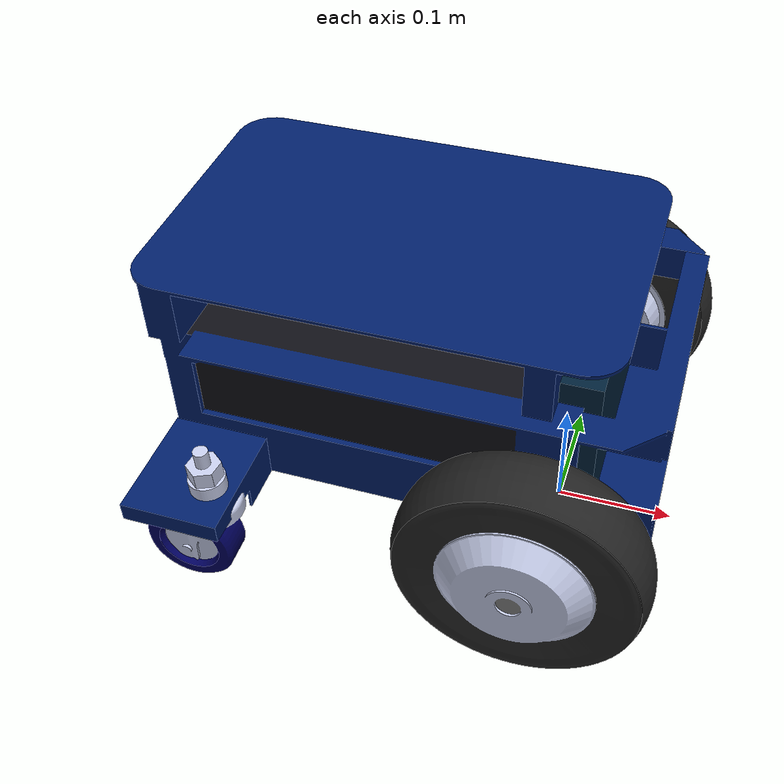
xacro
<?xml version="1.0"?>
<robot xmlns:xacro="http://www.ros.org/wiki/xacro">

  <xacro:property name="wheel_r" value="0.1" />
  <xacro:property name="wheel_xpos" value="0.11" />
  <xacro:include filename="$(find start_creating_robots)/worlds_and_models/krytn/inertial.xacro" />

  <xacro:macro name="low_friction">
              <mu>0.1</mu>
              <mu1>0.1</mu1>
              <mu2>0.1</mu2>
              <slip1>0</slip1>
              <slip2>0</slip2>
  </xacro:macro>

  <xacro:macro name="high_friction">
                <mu>0.5</mu>
                <mu1>0.5</mu1>
                <mu2>0.5</mu2>
                <minDepth>0.005</minDepth>
                <kp>1e8</kp>

  </xacro:macro>

 <link name="base_footprint"/>
  <joint name="base_footprint_joint" type="fixed">
    <parent link="base_footprint"/>
    <child link="base_link"/>
    <origin xyz="0 0 ${wheel_r}" rpy="0 0 0"/>
  </joint>
  <!-- Base Link -->
  <link name="base_link">
    <origin xyz="-0.25 0 ${0.03}" rpy="0 0 0" />

    <visual>
      <origin xyz="${-wheel_xpos} 0 ${-wheel_r+0.071}" rpy="0 0 0" />
      <geometry>
        <mesh filename="file://$(find start_creating_robots)/worlds_and_models/krytn/meshes/magni_body.dae" />
      </geometry>
    </visual>

    <collision>
	    <origin xyz="${-wheel_xpos} 0 ${-wheel_r+0.151}" rpy="0 0 0" />
      <geometry>
        <box size="0.398 0.268 0.160"/>
      </geometry>
    </collision>

    <collision>
      <origin xyz="${-wheel_xpos-0.026} 0 ${-wheel_r+0.248}" rpy="0 0 0" />
      <geometry>
        <box size="0.375 0.268 0.034"/>
      </geometry>

    </collision>

    <collision>
      <origin xyz="${-wheel_xpos-0.169} 0.169 ${-wheel_r+0.106}" rpy="0 0 0" />
      <geometry>
        <box size="0.1 0.07 0.07"/>
      </geometry>
    </collision>

    <collision>
      <origin xyz="${-wheel_xpos-0.169} -0.169 ${-wheel_r+0.106}" rpy="0 0 0" />
      <geometry>
        <box size="0.1 0.07 0.07"/>
      </geometry>
    </collision>

    <xacro:box_inertial_with_origin  x="0.398" y="0.221" z="0.150" mass="10.0">
      <origin xyz="-0.15 0 0.03" rpy="0 0 0" />
    </xacro:box_inertial_with_origin>

  </link>

  <gazebo reference="base_link">
  <xacro:low_friction/>
  </gazebo>

 <!-- Macro for defining wheels -->
  <xacro:macro name="wheel" params="prefix reflect">
    <link name="${prefix}_wheel">

      <collision>
        <origin xyz="${0.033*reflect} 0 0" rpy="0 ${pi/2} 0" />
        <geometry>
          <cylinder radius="${wheel_r}" length="0.01"/>
        </geometry>
      </collision>

      <visual>
        <origin xyz="${-0.071*reflect} 0 0" rpy="0 ${(reflect-1)*pi/2} 0" />
        <geometry>
          <mesh filename="file://$(find start_creating_robots)/worlds_and_models/krytn/meshes/front_wheel.dae" />
        </geometry>
      </visual>

      <xacro:cylinder_inertial_with_origin radius="${wheel_r}" length="0.05" mass="1.34">
        <origin xyz="0 0 0" rpy="0 ${pi/2} 0" />
      </xacro:cylinder_inertial_with_origin>
    </link>

    <joint name="${prefix}_wheel_joint" type="continuous">
      <axis xyz="1 0 0" rpy="0 0 0" />
      <parent link="base_link"/>
      <child link="${prefix}_wheel"/>
      <origin xyz="0 ${0.163*reflect} 0" rpy="0 0 ${pi/2}"/>
      <dynamics damping="0.2" friction="0.8"/>

    </joint>

    <gazebo reference="${prefix}_wheel">
    <xacro:high_friction/>
    </gazebo>

  </xacro:macro>

  <!--- create wheels -->
  <xacro:wheel prefix="left" reflect="1"/>
  <xacro:wheel prefix="right" reflect="-1"/>

  <!-- Macro for defining caster wheels -->
  <xacro:macro name="caster_wheel" params="prefix reflect">
    <link name="${prefix}_caster_wheel">
      <origin xyz="-0.37 ${reflect*0.169} ${-wheel_r+0.04}" rpy="0 0 0" />
      <collision>
        <origin xyz="-0.27 ${reflect*0.169} ${-wheel_r+0.04}" rpy="0 0 0" />
        <geometry>
          <sphere radius="0.04"/>
        </geometry>

      </collision>
      <visual>
        <origin xyz="-0.25 ${reflect*0.169} 0" rpy="0 0 ${pi}" />

        <geometry>
          <mesh filename="file://$(find start_creating_robots)/worlds_and_models/krytn/meshes/caster_wheel.dae" />
        </geometry>
      </visual>

    </link>

    <joint name="${prefix}_caster_wheel_joint" type="fixed">
      <parent link="base_link"/>
      <child link="${prefix}_caster_wheel"/>

    </joint>

  <gazebo reference="${prefix}_caster_wheel">
     <xacro:low_friction/>
  </gazebo>

  </xacro:macro>

    <!-- and caster wheels )-->
  <xacro:caster_wheel prefix="left" reflect="1"/>
  <xacro:caster_wheel prefix="right" reflect="-1"/>

</robot>
